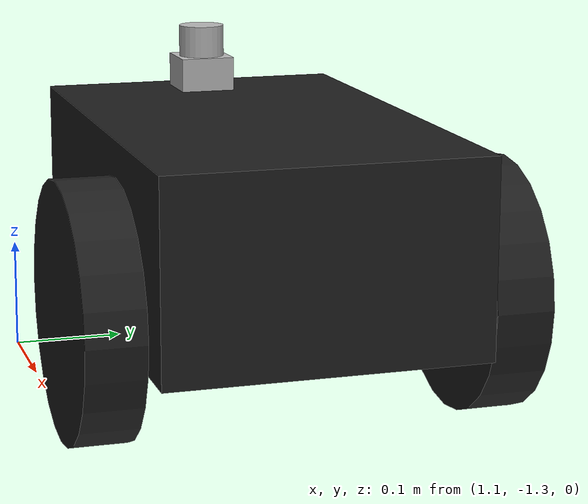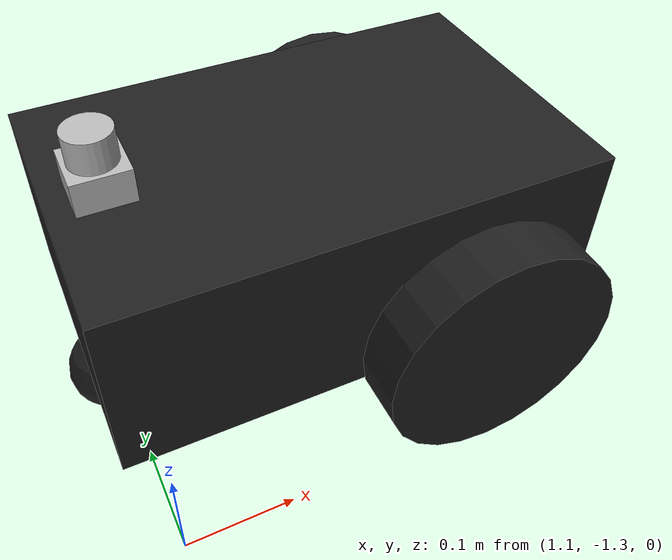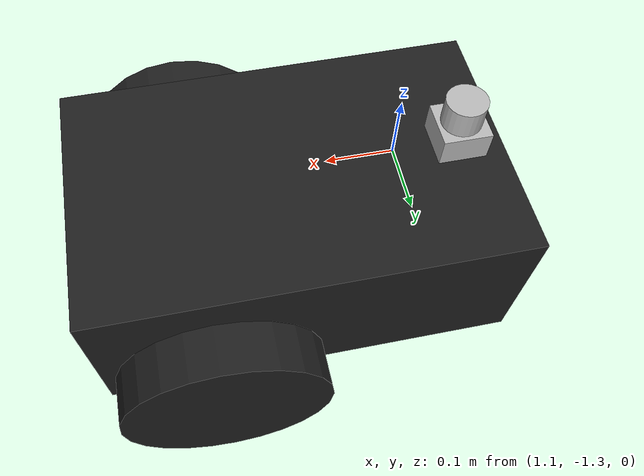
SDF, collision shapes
<?xml version='1.0'?>
<sdf version='1.6'>
  <model name='bot_igv'>
    <model name='hokuyo1'>
      <link name='link'>
        <pose frame=''>0.61 -0.36 0.27 0 -0 0</pose>
        <inertial>
          <mass>0.1</mass>
          <inertia>
            <ixx>1</ixx>
            <ixy>0</ixy>
            <ixz>0</ixz>
            <iyy>1</iyy>
            <iyz>0</iyz>
            <izz>1</izz>
          </inertia>
          <pose frame=''>0 0 0 0 -0 0</pose>
        </inertial>
        <self_collide>0</self_collide>
        <kinematic>0</kinematic>
        <sensor name='laser' type='ray'>
          <pose frame=''>0.01 0 0.0175 0 -0 3.14</pose>
          <ray>
            <scan>
              <horizontal>
                <samples>640</samples>
                <resolution>1</resolution>
                <min_angle>-3.14</min_angle>
                <max_angle>3.14</max_angle>
              </horizontal>
              <vertical>
                <samples>1</samples>
                <min_angle>0</min_angle>
                <max_angle>0</max_angle>
              </vertical>
            </scan>
            <range>
              <min>0.08</min>
              <max>10</max>
              <resolution>0.01</resolution>
            </range>
          </ray>
          <plugin name='laser' filename='libgazebo_ros_laser.so'>
            <topicName>scan</topicName>
            <frameName>laser</frameName>
            <always_on>1</always_on>
            <robotNamespace>qt_pi</robotNamespace>
            <update_rate>15</update_rate>
          </plugin>
          <update_rate>15</update_rate>
          <visualize>1</visualize>
        </sensor>
        <gravity>1</gravity>
        <visual name='visual'>
          <geometry>
            <mesh>
              <uri>model://hokuyo/meshes/hokuyo.dae</uri>
            </mesh>
          </geometry>
          <material>
            <shader type='pixel'>
              <normal_map>__default__</normal_map>
            </shader>
          </material>
          <pose frame=''>0 0 0 0 -0 0</pose>
          <cast_shadows>1</cast_shadows>
          <transparency>0</transparency>
        </visual>
        <collision name='collision-base'>
          <laser_retro>0</laser_retro>
          <max_contacts>10</max_contacts>
          <pose frame=''>0 0 -0.0145 0 -0 0</pose>
          <geometry>
            <box>
              <size>0.05 0.05 0.041</size>
            </box>
          </geometry>
          <surface>
            <friction>
              <ode>
                <mu>1</mu>
                <mu2>1</mu2>
                <fdir1>0 0 0</fdir1>
                <slip1>0</slip1>
                <slip2>0</slip2>
              </ode>
              <torsional>
                <coefficient>1</coefficient>
                <patch_radius>0</patch_radius>
                <surface_radius>0</surface_radius>
                <use_patch_radius>1</use_patch_radius>
                <ode>
                  <slip>0</slip>
                </ode>
              </torsional>
            </friction>
            <bounce>
              <restitution_coefficient>0</restitution_coefficient>
              <threshold>1e+06</threshold>
            </bounce>
            <contact>
              <collide_without_contact>0</collide_without_contact>
              <collide_without_contact_bitmask>1</collide_without_contact_bitmask>
              <collide_bitmask>1</collide_bitmask>
              <ode>
                <soft_cfm>0</soft_cfm>
                <soft_erp>0.2</soft_erp>
                <kp>1e+13</kp>
                <kd>1</kd>
                <max_vel>0.01</max_vel>
                <min_depth>0</min_depth>
              </ode>
              <bullet>
                <split_impulse>1</split_impulse>
                <split_impulse_penetration_threshold>-0.01</split_impulse_penetration_threshold>
                <soft_cfm>0</soft_cfm>
                <soft_erp>0.2</soft_erp>
                <kp>1e+13</kp>
                <kd>1</kd>
              </bullet>
            </contact>
          </surface>
        </collision>
        <collision name='collision-top'>
          <laser_retro>0</laser_retro>
          <max_contacts>10</max_contacts>
          <pose frame=''>0 0 0.0205 0 -0 0</pose>
          <geometry>
            <cylinder>
              <radius>0.021</radius>
              <length>0.029</length>
            </cylinder>
          </geometry>
          <surface>
            <friction>
              <ode>
                <mu>1</mu>
                <mu2>1</mu2>
                <fdir1>0 0 0</fdir1>
                <slip1>0</slip1>
                <slip2>0</slip2>
              </ode>
              <torsional>
                <coefficient>1</coefficient>
                <patch_radius>0</patch_radius>
                <surface_radius>0</surface_radius>
                <use_patch_radius>1</use_patch_radius>
                <ode>
                  <slip>0</slip>
                </ode>
              </torsional>
            </friction>
            <bounce>
              <restitution_coefficient>0</restitution_coefficient>
              <threshold>1e+06</threshold>
            </bounce>
            <contact>
              <collide_without_contact>0</collide_without_contact>
              <collide_without_contact_bitmask>1</collide_without_contact_bitmask>
              <collide_bitmask>1</collide_bitmask>
              <ode>
                <soft_cfm>0</soft_cfm>
                <soft_erp>0.2</soft_erp>
                <kp>1e+13</kp>
                <kd>1</kd>
                <max_vel>0.01</max_vel>
                <min_depth>0</min_depth>
              </ode>
              <bullet>
                <split_impulse>1</split_impulse>
                <split_impulse_penetration_threshold>-0.01</split_impulse_penetration_threshold>
                <soft_cfm>0</soft_cfm>
                <soft_erp>0.2</soft_erp>
                <kp>1e+13</kp>
                <kd>1</kd>
              </bullet>
            </contact>
          </surface>
        </collision>
      </link>
      <static>0</static>
      <allow_auto_disable>1</allow_auto_disable>
      <pose frame=''>0.507281 -0.758264 0 0 -0 0</pose>
    </model>
    <model name='pioneer2dx'>
      <link name='chassis'>
        <pose frame=''>0 0 0.16 0 -0 0</pose>
        <inertial>
          <mass>5.67</mass>
          <inertia>
            <ixx>0.07</ixx>
            <iyy>0.08</iyy>
            <izz>0.1</izz>
            <ixy>0</ixy>
            <ixz>0</ixz>
            <iyz>0</iyz>
          </inertia>
        </inertial>
        <collision name='collision'>
          <geometry>
            <box>
              <size>0.445 0.277 0.17</size>
            </box>
          </geometry>
        </collision>
        <collision name='castor_collision'>
          <pose frame=''>-0.2 0 -0.12 0 -0 0</pose>
          <geometry>
            <sphere>
              <radius>0.04</radius>
            </sphere>
          </geometry>
          <surface>
            <friction>
              <ode>
                <mu>0</mu>
                <mu2>0</mu2>
                <slip1>1</slip1>
                <slip2>1</slip2>
              </ode>
            </friction>
          </surface>
        </collision>
        <visual name='visual'>
          <pose frame=''>0 0 0.04 0 -0 0</pose>
          <geometry>
            <mesh>
              <uri>model://pioneer2dx/meshes/chassis.dae</uri>
            </mesh>
          </geometry>
        </visual>
        <visual name='castor_visual'>
          <pose frame=''>-0.2 0 -0.12 0 -0 0</pose>
          <geometry>
            <sphere>
              <radius>0.04</radius>
            </sphere>
          </geometry>
          <material>
            <script>
              <uri>file://media/materials/scripts/gazebo.material</uri>
              <name>Gazebo/FlatBlack</name>
            </script>
          </material>
        </visual>
      </link>
      <link name='right_wheel'>
        <pose frame=''>0.1 -0.17 0.11 -0 1.5707 1.5707</pose>
        <inertial>
          <mass>1.5</mass>
          <inertia>
            <ixx>0.0051</ixx>
            <iyy>0.0051</iyy>
            <izz>0.009</izz>
            <ixy>0</ixy>
            <ixz>0</ixz>
            <iyz>0</iyz>
          </inertia>
        </inertial>
        <collision name='collision'>
          <geometry>
            <cylinder>
              <radius>0.11</radius>
              <length>0.05</length>
            </cylinder>
          </geometry>
          <surface>
            <friction>
              <ode>
                <mu>100000</mu>
                <mu2>100000</mu2>
                <slip1>0</slip1>
                <slip2>0</slip2>
              </ode>
            </friction>
          </surface>
        </collision>
        <visual name='visual'>
          <geometry>
            <cylinder>
              <radius>0.11</radius>
              <length>0.05</length>
            </cylinder>
          </geometry>
          <material>
            <script>
              <uri>file://media/materials/scripts/gazebo.material</uri>
              <name>Gazebo/FlatBlack</name>
            </script>
          </material>
        </visual>
      </link>
      <link name='left_wheel'>
        <pose frame=''>0.1 0.17 0.11 -0 1.5707 1.5707</pose>
        <inertial>
          <mass>1.5</mass>
          <inertia>
            <ixx>0.0051</ixx>
            <iyy>0.0051</iyy>
            <izz>0.009</izz>
            <ixy>0</ixy>
            <ixz>0</ixz>
            <iyz>0</iyz>
          </inertia>
        </inertial>
        <collision name='collision'>
          <geometry>
            <cylinder>
              <radius>0.11</radius>
              <length>0.05</length>
            </cylinder>
          </geometry>
          <surface>
            <friction>
              <ode>
                <mu>100000</mu>
                <mu2>100000</mu2>
                <slip1>0</slip1>
                <slip2>0</slip2>
              </ode>
            </friction>
          </surface>
        </collision>
        <visual name='visual'>
          <geometry>
            <cylinder>
              <radius>0.11</radius>
              <length>0.05</length>
            </cylinder>
          </geometry>
          <material>
            <script>
              <uri>file://media/materials/scripts/gazebo.material</uri>
              <name>Gazebo/FlatBlack</name>
            </script>
          </material>
        </visual>
      </link>
      <joint name='left_wheel_hinge' type='revolute'>
        <pose frame=''>0 0 -0.03 0 -0 0</pose>
        <child>left_wheel</child>
        <parent>chassis</parent>
        <axis>
          <xyz>0 1 0</xyz>
          <use_parent_model_frame>1</use_parent_model_frame>
          <limit>
            <lower>-1e+16</lower>
            <upper>1e+16</upper>
          </limit>
        </axis>
      </joint>
      <joint name='right_wheel_hinge' type='revolute'>
        <pose frame=''>0 0 0.03 0 -0 0</pose>
        <child>right_wheel</child>
        <parent>chassis</parent>
        <axis>
          <xyz>0 1 0</xyz>
          <use_parent_model_frame>1</use_parent_model_frame>
          <limit>
            <lower>-1e+16</lower>
            <upper>1e+16</upper>
          </limit>
        </axis>
      </joint>
      <plugin name='diff_drive' filename='libDiffDrivePlugin.so'>
        <left_joint>left_wheel_hinge</left_joint>
        <right_joint>right_wheel_hinge</right_joint>
        <torque>5</torque>
      </plugin>
      <pose frame=''>1.29256 -1.11823 0 0 -0 0</pose>
    </model>
    <joint name='chassis_JOINT_0' type='fixed'>
      <parent>pioneer2dx::chassis</parent>
      <child>hokuyo1::link</child>
      <pose frame=''>0 0 0 0 -0 0</pose>
      <physics>
        <ode>
          <limit>
            <cfm>0</cfm>
            <erp>0.2</erp>
          </limit>
          <suspension>
            <cfm>0</cfm>
            <erp>0.2</erp>
          </suspension>
        </ode>
      </physics>
    </joint>
    <static>0</static>
    <allow_auto_disable>1</allow_auto_disable>
  </model>
</sdf>
